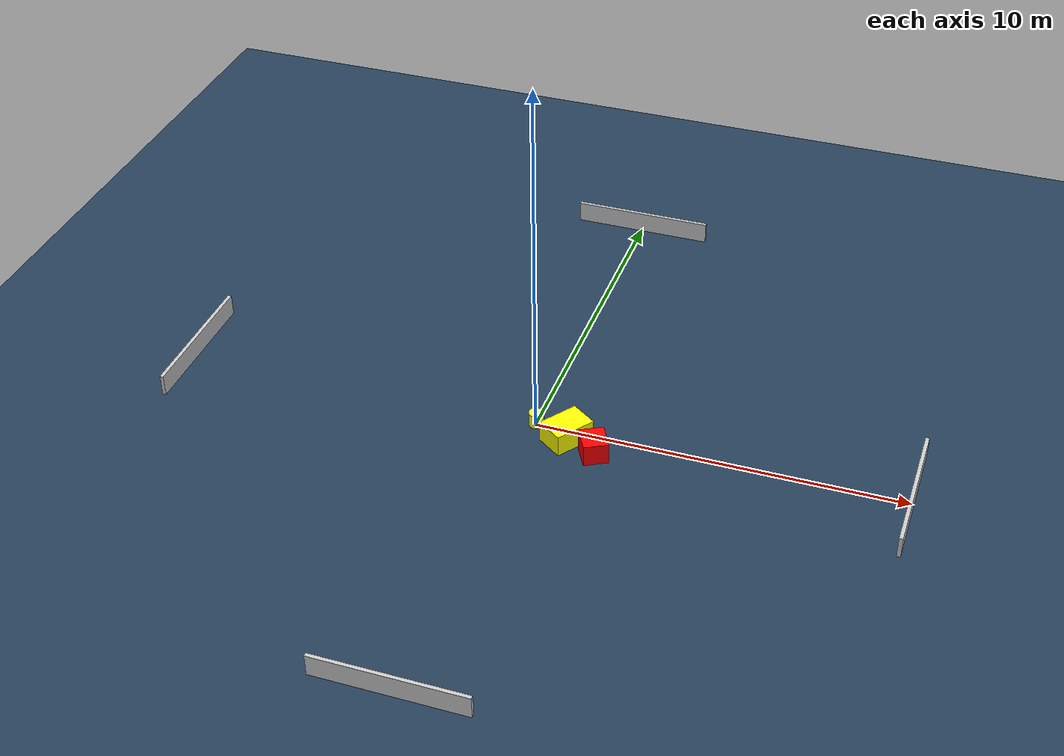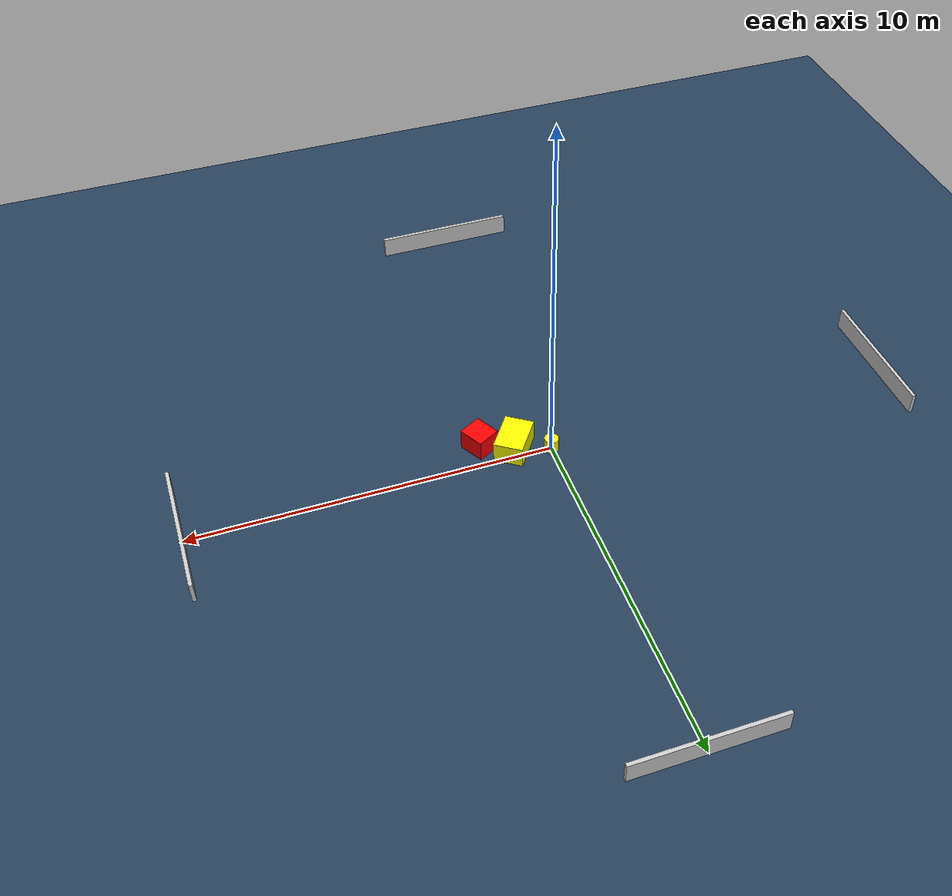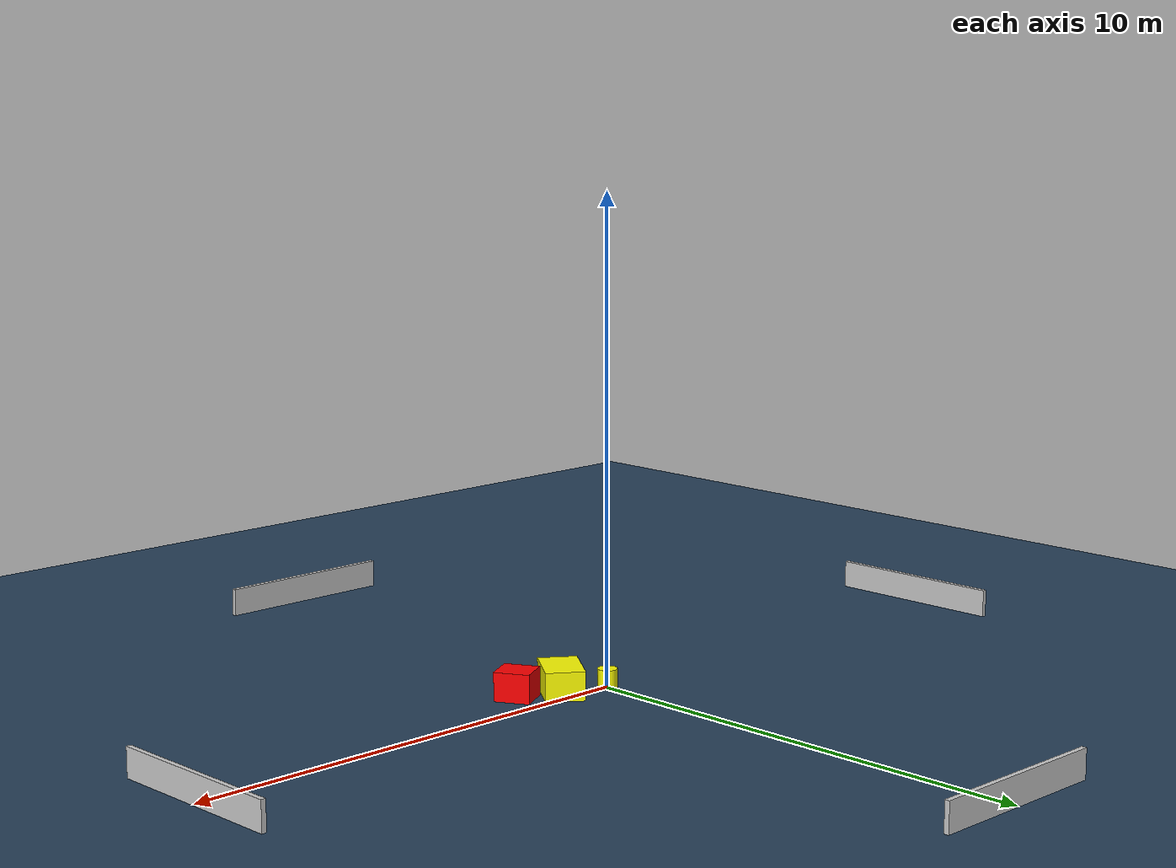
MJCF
<?xml version="1.0" ?>
<mujoco model="generated_environment">
  <option timestep="0.01" integrator="RK4" cone="elliptic"/>
  <default>
    <geom density="1"/>
  </default>
  <asset>
    <texture builtin="gradient" height="3072" name="skybox" rgb1="0.3 0.5 0.7" rgb2="0 0 0" type="skybox" width="512"/>
    <texture builtin="checker" height="300" name="groundplane" rgb1="0.2 0.3 0.4" rgb2="0.1 0.2 0.3" type="2d" width="300"/>
    <material name="groundplane" reflectance="0.2" texrepeat="5 5" texture="groundplane"/>
  </asset>
  <worldbody>
    <light dir="0 0 -1" directional="true" pos="0 0 1.5"/>
    <geom condim="3" friction="0.5 0.005 0.001" material="groundplane" name="floor" pos="0 0 0" size="0 0 0.05" type="plane"/>
    <body name="walls">
      <geom name="wall_1" condim="4" pos="-10.0 0.0 0.3" rgba="0.800000011920929 0.800000011920929 0.800000011920929 1.0" size="0.05 2.0 0.3" type="box"/>
      <geom name="wall_2" condim="4" pos="10.0 0.0 0.3" rgba="0.800000011920929 0.800000011920929 0.800000011920929 1.0" size="0.05 2.0 0.3" type="box"/>
      <geom name="wall_3" condim="4" pos="0.0 -10.0 0.3" rgba="0.800000011920929 0.800000011920929 0.800000011920929 1.0" size="2.0 0.05 0.3" type="box"/>
      <geom name="wall_4" condim="4" pos="0.0 10.0 0.3" rgba="0.800000011920929 0.800000011920929 0.800000011920929 1.0" size="2.0 0.05 0.3" type="box"/>
    </body>
    <body name="robot">
      <joint name="joint_x" type="slide" pos="0 0 0" axis="1 0 0"/>
      <joint name="joint_y" type="slide" pos="0 0 0" axis="0 1 0"/>
      <geom name="robot" type="cylinder" pos="0.0 0.0 0.2" size="0.2 0.2 0.0" mass="5.0" friction="1.0 0.005 0.0001" condim="4" rgba="1.0 1.0 0.0 1.0"/>
    </body>
    <body name="obstacle_1_movable">
      <geom name="obstacle_1_movable" condim="4" pos="0.9613497794726542 -0.3412202782385595 0.3" euler="0 0 144.84179055254998" friction="0.0 0.005 0.001" rgba="1.0 1.0 0.0 1.0" size="0.4063945958575655 0.5760672870611612 0.3" type="box" mass="0.1"/>
      <joint type="free"/>
    </body>
    <body name="obstacle_2_static">
      <geom name="obstacle_2_static" condim="4" pos="1.8210702242913293 -0.7217197053873979 0.3" euler="0 0 208.53823939528547" friction="0.0 0.005 0.001" rgba="1.0 0.0 0.0 1.0" size="0.338952609477816 0.3706929575863132 0.3" type="box"/>
    </body>
  </worldbody>
  <actuator>
    <motor name="actuator_x" joint="joint_x" gear="1" ctrlrange="-1 1"/>
    <motor name="actuator_y" joint="joint_y" gear="1" ctrlrange="-1 1"/>
  </actuator>
</mujoco>
